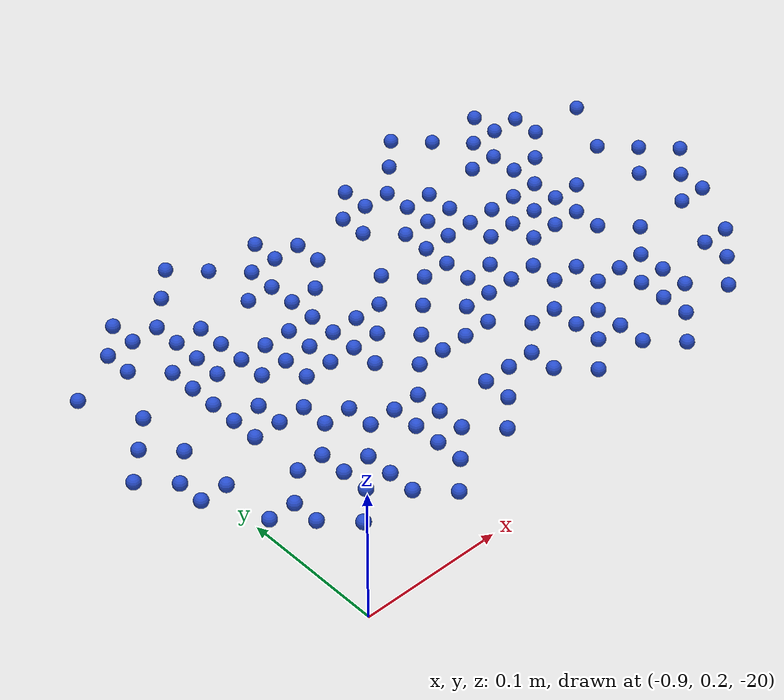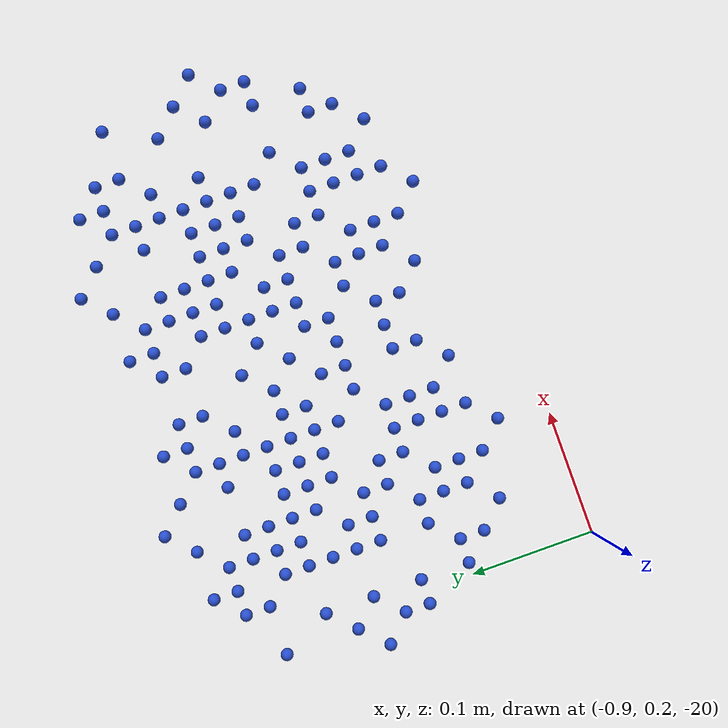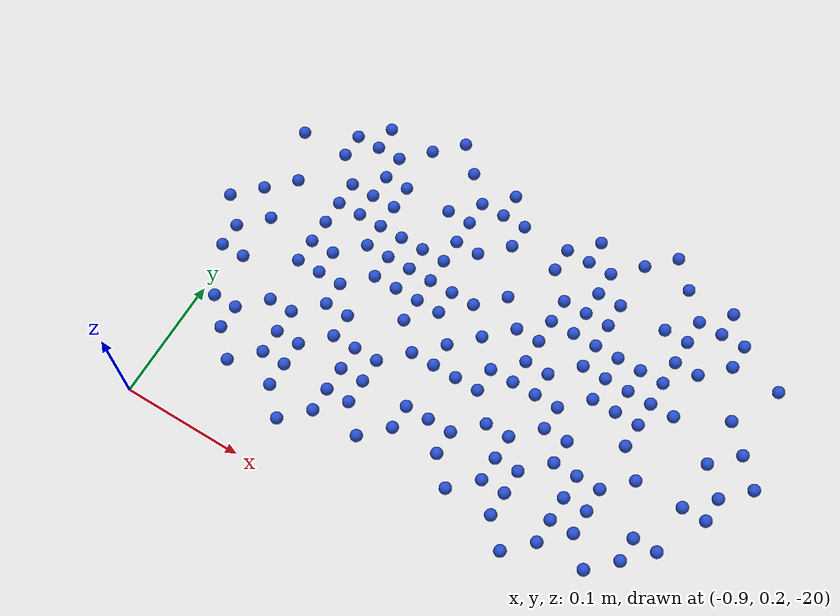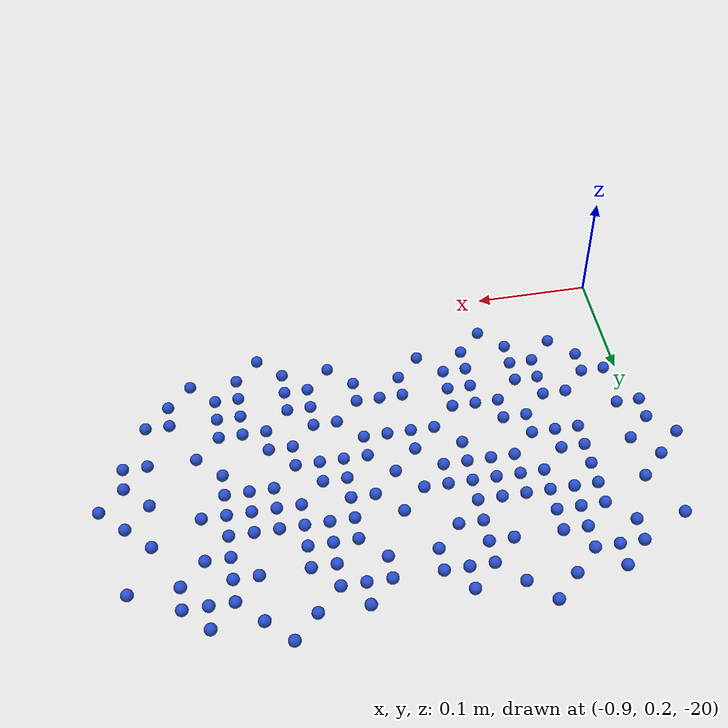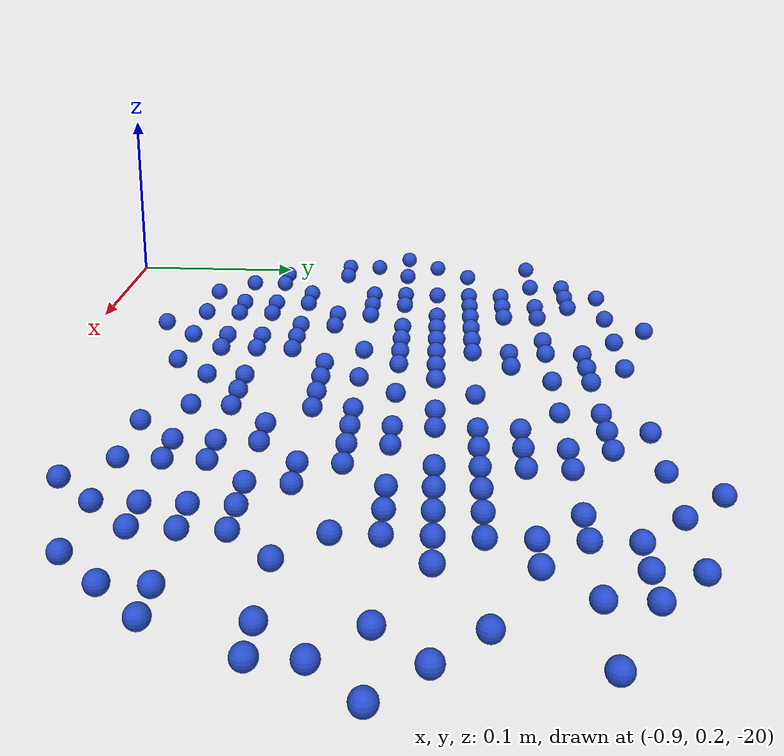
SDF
<sdf version="1.7">
 <model name="Washbasin_Water">
  <static>true</static>
  <link name="washbasin_water_br1">
   <pose>-0.59 0.38 -20 0 0 0</pose>
   <visual name="green_mark_centre1_visual">
    <geometry><sphere><radius>0.005</radius></sphere></geometry>
    <material><script><name>Gazebo/BlueGlow</name></script></material>
   </visual>
   <visual name="green_mark_centre2_visual">
    <pose>0.02 0 0 0 0 0</pose>
    <geometry><sphere><radius>0.005</radius></sphere></geometry>
    <material><script><name>Gazebo/BlueGlow</name></script></material>
   </visual>
   <visual name="green_mark_centre4_visual">
    <pose>0.04 0 0 0 0 0</pose>
    <geometry><sphere><radius>0.005</radius></sphere></geometry>
    <material><script><name>Gazebo/BlueGlow</name></script></material>
   </visual>
   <visual name="green_mark_centre5_visual">
    <pose>-0.04 0 0 0 0 0</pose>
    <geometry><sphere><radius>0.005</radius></sphere></geometry>
    <material><script><name>Gazebo/BlueGlow</name></script></material>
   </visual>
   <visual name="green_mark_centre7_visual">
    <pose>-0.06 0 0 0 0 0</pose>
    <geometry><sphere><radius>0.005</radius></sphere></geometry>
    <material><script><name>Gazebo/BlueGlow</name></script></material>
   </visual>
   <visual name="green_mark_centre8_visual">
    <pose>0 0.02 0 0 0 0</pose>
    <geometry><sphere><radius>0.005</radius></sphere></geometry>
    <material><script><name>Gazebo/BlueGlow</name></script></material>
   </visual>
   <visual name="green_mark_centre10_visual">
    <pose>0 0.04 0 0 0 0</pose>
    <geometry><sphere><radius>0.005</radius></sphere></geometry>
    <material><script><name>Gazebo/BlueGlow</name></script></material>
   </visual>
   <visual name="green_mark_centre11_visual">
    <pose>0 -0.04 0 0 0 0</pose>
    <geometry><sphere><radius>0.005</radius></sphere></geometry>
    <material><script><name>Gazebo/BlueGlow</name></script></material>
   </visual>
   <visual name="green_mark_centre13_visual">
    <pose>0 -0.06 0 0 0 0</pose>
    <geometry><sphere><radius>0.005</radius></sphere></geometry>
    <material><script><name>Gazebo/BlueGlow</name></script></material>
   </visual>
   <visual name="green_mark_centre14_visual">
    <pose>0.02 0.02 0 0 0 0</pose>
    <geometry><sphere><radius>0.005</radius></sphere></geometry>
    <material><script><name>Gazebo/BlueGlow</name></script></material>
   </visual>
   <visual name="green_mark_centre16_visual">
    <pose>-0.02 -0.02 0 0 0 0</pose>
    <geometry><sphere><radius>0.005</radius></sphere></geometry>
    <material><script><name>Gazebo/BlueGlow</name></script></material>
   </visual>
   <visual name="green_mark_centre17_visual">
    <pose>-0.02 0.02 0 0 0 0</pose>
    <geometry><sphere><radius>0.005</radius></sphere></geometry>
    <material><script><name>Gazebo/BlueGlow</name></script></material>
   </visual>
   <visual name="green_mark_centre19_visual">
    <pose>0.04 0.04 0 0 0 0</pose>
    <geometry><sphere><radius>0.005</radius></sphere></geometry>
    <material><script><name>Gazebo/BlueGlow</name></script></material>
   </visual>
   <visual name="green_mark_centre20_visual">
    <pose>-0.04 0.04 0 0 0 0</pose>
    <geometry><sphere><radius>0.005</radius></sphere></geometry>
    <material><script><name>Gazebo/BlueGlow</name></script></material>
   </visual>
   <visual name="green_mark_centre22_visual">
    <pose>0.04 0.06 0 0 0 0</pose>
    <geometry><sphere><radius>0.005</radius></sphere></geometry>
    <material><script><name>Gazebo/BlueGlow</name></script></material>
   </visual>
   <visual name="green_mark_centre23_visual">
    <pose>0.04 -0.06 0 0 0 0</pose>
    <geometry><sphere><radius>0.005</radius></sphere></geometry>
    <material><script><name>Gazebo/BlueGlow</name></script></material>
   </visual>
   <visual name="green_mark_centre25_visual">
    <pose>-0.04 0.06 0 0 0 0</pose>
    <geometry><sphere><radius>0.005</radius></sphere></geometry>
    <material><script><name>Gazebo/BlueGlow</name></script></material>
   </visual>
   <visual name="green_mark_centre26_visual">
    <pose>-0.04 -0.06 0 0 0 0</pose>
    <geometry><sphere><radius>0.005</radius></sphere></geometry>
    <material><script><name>Gazebo/BlueGlow</name></script></material>
   </visual>
   <visual name="green_mark_centre28_visual">
    <pose>0.06 0.06 0 0 0 0</pose>
    <geometry><sphere><radius>0.005</radius></sphere></geometry>
    <material><script><name>Gazebo/BlueGlow</name></script></material>
   </visual>
   <visual name="green_mark_centre29_visual">
    <pose>-0.06 0.06 0 0 0 0</pose>
    <geometry><sphere><radius>0.005</radius></sphere></geometry>
    <material><script><name>Gazebo/BlueGlow</name></script></material>
   </visual>
   <visual name="green_mark_centre31_visual">
    <pose>-0.06 -0.06 0 0 0 0</pose>
    <geometry><sphere><radius>0.005</radius></sphere></geometry>
    <material><script><name>Gazebo/BlueGlow</name></script></material>
   </visual>
   <visual name="green_mark_centre32_visual">
    <pose>0.02 0.04 0 0 0 0</pose>
    <geometry><sphere><radius>0.005</radius></sphere></geometry>
    <material><script><name>Gazebo/BlueGlow</name></script></material>
   </visual>
   <visual name="green_mark_centre34_visual">
    <pose>-0.02 0.04 0 0 0 0</pose>
    <geometry><sphere><radius>0.005</radius></sphere></geometry>
    <material><script><name>Gazebo/BlueGlow</name></script></material>
   </visual>
   <visual name="green_mark_centre35_visual">
    <pose>-0.02 -0.04 0 0 0 0</pose>
    <geometry><sphere><radius>0.005</radius></sphere></geometry>
    <material><script><name>Gazebo/BlueGlow</name></script></material>
   </visual>
   <visual name="green_mark_centre37_visual">
    <pose>0.02 -0.06 0 0 0 0</pose>
    <geometry><sphere><radius>0.005</radius></sphere></geometry>
    <material><script><name>Gazebo/BlueGlow</name></script></material>
   </visual>
   <visual name="green_mark_centre38_visual">
    <pose>-0.02 0.06 0 0 0 0</pose>
    <geometry><sphere><radius>0.005</radius></sphere></geometry>
    <material><script><name>Gazebo/BlueGlow</name></script></material>
   </visual>
   <visual name="green_mark_centre40_visual">
    <pose>0.04 0.02 0 0 0 0</pose>
    <geometry><sphere><radius>0.005</radius></sphere></geometry>
    <material><script><name>Gazebo/BlueGlow</name></script></material>
   </visual>
   <visual name="green_mark_centre41_visual">
    <pose>0.04 -0.02 0 0 0 0</pose>
    <geometry><sphere><radius>0.005</radius></sphere></geometry>
    <material><script><name>Gazebo/BlueGlow</name></script></material>
   </visual>
   <visual name="green_mark_centre43_visual">
    <pose>-0.04 -0.02 0 0 0 0</pose>
    <geometry><sphere><radius>0.005</radius></sphere></geometry>
    <material><script><name>Gazebo/BlueGlow</name></script></material>
   </visual>
   <visual name="green_mark_centre44_visual">
    <pose>0.06 0.02 0 0 0 0</pose>
    <geometry><sphere><radius>0.005</radius></sphere></geometry>
    <material><script><name>Gazebo/BlueGlow</name></script></material>
   </visual>
   <visual name="green_mark_centre46_visual">
    <pose>-0.06 0.02 0 0 0 0</pose>
    <geometry><sphere><radius>0.005</radius></sphere></geometry>
    <material><script><name>Gazebo/BlueGlow</name></script></material>
   </visual>
   <visual name="green_mark_centre47_visual">
    <pose>-0.06 -0.02 0 0 0 0</pose>
    <geometry><sphere><radius>0.005</radius></sphere></geometry>
    <material><script><name>Gazebo/BlueGlow</name></script></material>
   </visual>
   <visual name="green_mark_centre49_visual">
    <pose>0.06 -0.04 0 0 0 0</pose>
    <geometry><sphere><radius>0.005</radius></sphere></geometry>
    <material><script><name>Gazebo/BlueGlow</name></script></material>
   </visual>
   <visual name="green_mark_centre50_visual">
    <pose>-0.06 0.04 0 0 0 0</pose>
    <geometry><sphere><radius>0.005</radius></sphere></geometry>
    <material><script><name>Gazebo/BlueGlow</name></script></material>
   </visual>
   <visual name="green_mark_top1_visual">
    <pose>-0.06 0.12 0 0 0 0</pose>
    <geometry><sphere><radius>0.005</radius></sphere></geometry>
    <material><script><name>Gazebo/BlueGlow</name></script></material>
   </visual>
   <visual name="green_mark_top2_visual">
    <pose>-0.06 0.10 0 0 0 0</pose>
    <geometry><sphere><radius>0.005</radius></sphere></geometry>
    <material><script><name>Gazebo/BlueGlow</name></script></material>
   </visual>
   <visual name="green_mark_top4_visual">
    <pose>-0.04 0.10 0 0 0 0</pose>
    <geometry><sphere><radius>0.005</radius></sphere></geometry>
    <material><script><name>Gazebo/BlueGlow</name></script></material>
   </visual>
   <visual name="green_mark_top7_visual">
    <pose>-0.04 0.08 0 0 0 0</pose>
    <geometry><sphere><radius>0.005</radius></sphere></geometry>
    <material><script><name>Gazebo/BlueGlow</name></script></material>
   </visual>
   <visual name="green_mark_top8_visual">
    <pose>-0.02 0.12 0 0 0 0</pose>
    <geometry><sphere><radius>0.005</radius></sphere></geometry>
    <material><script><name>Gazebo/BlueGlow</name></script></material>
   </visual>
   <visual name="green_mark_top10_visual">
    <pose>-0.02 0.12 0 0 0 0</pose>
    <geometry><sphere><radius>0.005</radius></sphere></geometry>
    <material><script><name>Gazebo/BlueGlow</name></script></material>
   </visual>
   <visual name="green_mark_top12_visual">
    <pose>-0.02 0.08 0 0 0 0</pose>
    <geometry><sphere><radius>0.005</radius></sphere></geometry>
    <material><script><name>Gazebo/BlueGlow</name></script></material>
   </visual>
   <visual name="green_mark_top14_visual">
    <pose>0.06 0.12 0 0 0 0</pose>
    <geometry><sphere><radius>0.005</radius></sphere></geometry>
    <material><script><name>Gazebo/BlueGlow</name></script></material>
   </visual>
   <visual name="green_mark_top15_visual">
    <pose>0.06 0.10 0 0 0 0</pose>
    <geometry><sphere><radius>0.005</radius></sphere></geometry>
    <material><script><name>Gazebo/BlueGlow</name></script></material>
   </visual>
   <visual name="green_mark_top17_visual">
    <pose>0.04 0.10 0 0 0 0</pose>
    <geometry><sphere><radius>0.005</radius></sphere></geometry>
    <material><script><name>Gazebo/BlueGlow</name></script></material>
   </visual>
   <visual name="green_mark_top20_visual">
    <pose>0.04 0.08 0 0 0 0</pose>
    <geometry><sphere><radius>0.005</radius></sphere></geometry>
    <material><script><name>Gazebo/BlueGlow</name></script></material>
   </visual>
   <visual name="green_mark_top21_visual">
    <pose>0.02 0.12 0 0 0 0</pose>
    <geometry><sphere><radius>0.005</radius></sphere></geometry>
    <material><script><name>Gazebo/BlueGlow</name></script></material>
   </visual>
   <visual name="green_mark_top23_visual">
    <pose>0.02 0.12 0 0 0 0</pose>
    <geometry><sphere><radius>0.005</radius></sphere></geometry>
    <material><script><name>Gazebo/BlueGlow</name></script></material>
   </visual>
   <visual name="green_mark_top25_visual">
    <pose>0.02 0.08 0 0 0 0</pose>
    <geometry><sphere><radius>0.005</radius></sphere></geometry>
    <material><script><name>Gazebo/BlueGlow</name></script></material>
   </visual>
   <visual name="green_mark_top88_visual">
    <pose>0.0 0.14 0 0 0 0</pose>
    <geometry><sphere><radius>0.005</radius></sphere></geometry>
    <material><script><name>Gazebo/BlueGlow</name></script></material>
   </visual>
   <visual name="green_mark_top89_visual">
    <pose>0.0 -0.14 0 0 0 0</pose>
    <geometry><sphere><radius>0.005</radius></sphere></geometry>
    <material><script><name>Gazebo/BlueGlow</name></script></material>
   </visual>
   <visual name="green_mark_top3_visual">
    <pose>-0.06 -0.12 0 0 0 0</pose>
    <geometry><sphere><radius>0.005</radius></sphere></geometry>
    <material><script><name>Gazebo/BlueGlow</name></script></material>
   </visual>
   <visual name="green_mark_top5_visual">
    <pose>-0.04 -0.10 0 0 0 0</pose>
    <geometry><sphere><radius>0.005</radius></sphere></geometry>
    <material><script><name>Gazebo/BlueGlow</name></script></material>
   </visual>
   <visual name="green_mark_top6_visual">
    <pose>-0.04 -0.08 0 0 0 0</pose>
    <geometry><sphere><radius>0.005</radius></sphere></geometry>
    <material><script><name>Gazebo/BlueGlow</name></script></material>
   </visual>
   <visual name="green_mark_top9_visual">
    <pose>-0.02 -0.12 0 0 0 0</pose>
    <geometry><sphere><radius>0.005</radius></sphere></geometry>
    <material><script><name>Gazebo/BlueGlow</name></script></material>
   </visual>
   <visual name="green_mark_top11_visual">
    <pose>-0.02 -0.10 0 0 0 0</pose>
    <geometry><sphere><radius>0.005</radius></sphere></geometry>
    <material><script><name>Gazebo/BlueGlow</name></script></material>
   </visual>
   <visual name="green_mark_top13_visual">
    <pose>-0.02 -0.08 0 0 0 0</pose>
    <geometry><sphere><radius>0.005</radius></sphere></geometry>
    <material><script><name>Gazebo/BlueGlow</name></script></material>
   </visual>
   <visual name="green_mark_top6_visual">
    <pose>-0.04 -0.08 0 0 0 0</pose>
    <geometry><sphere><radius>0.005</radius></sphere></geometry>
    <material><script><name>Gazebo/BlueGlow</name></script></material>
   </visual>
   <visual name="green_mark_top16_visual">
    <pose>0.06 -0.12 0 0 0 0</pose>
    <geometry><sphere><radius>0.005</radius></sphere></geometry>
    <material><script><name>Gazebo/BlueGlow</name></script></material>
   </visual>
   <visual name="green_mark_top18_visual">
    <pose>0.04 -0.10 0 0 0 0</pose>
    <geometry><sphere><radius>0.005</radius></sphere></geometry>
    <material><script><name>Gazebo/BlueGlow</name></script></material>
   </visual>
   <visual name="green_mark_top19_visual">
    <pose>0.04 -0.08 0 0 0 0</pose>
    <geometry><sphere><radius>0.005</radius></sphere></geometry>
    <material><script><name>Gazebo/BlueGlow</name></script></material>
   </visual>
   <visual name="green_mark_top22_visual">
    <pose>0.02 -0.12 0 0 0 0</pose>
    <geometry><sphere><radius>0.005</radius></sphere></geometry>
    <material><script><name>Gazebo/BlueGlow</name></script></material>
   </visual>
   <visual name="green_mark_top24_visual">
    <pose>0.02 -0.10 0 0 0 0</pose>
    <geometry><sphere><radius>0.005</radius></sphere></geometry>
    <material><script><name>Gazebo/BlueGlow</name></script></material>
   </visual>
   <visual name="green_mark_top26_visual">
    <pose>0.02 -0.08 0 0 0 0</pose>
    <geometry><sphere><radius>0.005</radius></sphere></geometry>
    <material><script><name>Gazebo/BlueGlow</name></script></material>
   </visual>
   <visual name="green_mark_top3_visual">
    <pose>-0.14 0 0 0 0 0</pose>
    <geometry><sphere><radius>0.005</radius></sphere></geometry>
    <material><script><name>Gazebo/BlueGlow</name></script></material>
   </visual>
   <visual name="green_mark_top365_visual">
    <pose>-0.12 0.08 0 0 0 0</pose>
    <geometry><sphere><radius>0.005</radius></sphere></geometry>
    <material><script><name>Gazebo/BlueGlow</name></script></material>
   </visual>
   <visual name="green_mark_top93_visual">
    <pose>-0.10 0 0 0 0 0</pose>
    <geometry><sphere><radius>0.005</radius></sphere></geometry>
    <material><script><name>Gazebo/BlueGlow</name></script></material>
   </visual>
   <visual name="green_mark_top5_visual">
    <pose>-0.12 0.02 0 0 0 0</pose>
    <geometry><sphere><radius>0.005</radius></sphere></geometry>
    <material><script><name>Gazebo/BlueGlow</name></script></material>
   </visual>
   <visual name="green_mark_top6_visual">
    <pose>-0.10 0.04 0 0 0 0</pose>
    <geometry><sphere><radius>0.005</radius></sphere></geometry>
    <material><script><name>Gazebo/BlueGlow</name></script></material>
   </visual>
   <visual name="green_mark_top20_visual">
    <pose>-0.08 0.10 0 0 0 0</pose>
    <geometry><sphere><radius>0.005</radius></sphere></geometry>
    <material><script><name>Gazebo/BlueGlow</name></script></material>
   </visual>
   <visual name="green_mark_top50_visual">
    <pose>-0.08 0.08 0 0 0 0</pose>
    <geometry><sphere><radius>0.005</radius></sphere></geometry>
    <material><script><name>Gazebo/BlueGlow</name></script></material>
   </visual>
   <visual name="green_mark_top3_visual">
    <pose>-0.12 -0.04 0 0 0 0</pose>
    <geometry><sphere><radius>0.005</radius></sphere></geometry>
    <material><script><name>Gazebo/BlueGlow</name></script></material>
   </visual>
   <visual name="green_mark_top5_visual">
    <pose>-0.12 -0.02 0 0 0 0</pose>
    <geometry><sphere><radius>0.005</radius></sphere></geometry>
    <material><script><name>Gazebo/BlueGlow</name></script></material>
   </visual>
   <visual name="green_mark_top6_visual">
    <pose>-0.10 -0.04 0 0 0 0</pose>
    <geometry><sphere><radius>0.005</radius></sphere></geometry>
    <material><script><name>Gazebo/BlueGlow</name></script></material>
   </visual>
   <visual name="green_mark_top6_visual">
    <pose>-0.10 -0.08 0 0 0 0</pose>
    <geometry><sphere><radius>0.005</radius></sphere></geometry>
    <material><script><name>Gazebo/BlueGlow</name></script></material>
   </visual>
   <visual name="green_mark_top20_visual">
    <pose>-0.08 -0.10 0 0 0 0</pose>
    <geometry><sphere><radius>0.005</radius></sphere></geometry>
    <material><script><name>Gazebo/BlueGlow</name></script></material>
   </visual>
   <visual name="green_mark_top50_visual">
    <pose>-0.08 -0.08 0 0 0 0</pose>
    <geometry><sphere><radius>0.005</radius></sphere></geometry>
    <material><script><name>Gazebo/BlueGlow</name></script></material>
   </visual>
   <visual name="green_mark_top3_visual">
    <pose>0.14 0 0 0 0 0</pose>
    <geometry><sphere><radius>0.005</radius></sphere></geometry>
    <material><script><name>Gazebo/BlueGlow</name></script></material>
   </visual>
   <visual name="green_mark_top365_visual">
    <pose>0.12 0.08 0 0 0 0</pose>
    <geometry><sphere><radius>0.005</radius></sphere></geometry>
    <material><script><name>Gazebo/BlueGlow</name></script></material>
   </visual>
   <visual name="green_mark_top93_visual">
    <pose>0.10 0 0 0 0 0</pose>
    <geometry><sphere><radius>0.005</radius></sphere></geometry>
    <material><script><name>Gazebo/BlueGlow</name></script></material>
   </visual>
   <visual name="green_mark_top5_visual">
    <pose>0.12 0.02 0 0 0 0</pose>
    <geometry><sphere><radius>0.005</radius></sphere></geometry>
    <material><script><name>Gazebo/BlueGlow</name></script></material>
   </visual>
   <visual name="green_mark_top6_visual">
    <pose>0.10 0.04 0 0 0 0</pose>
    <geometry><sphere><radius>0.005</radius></sphere></geometry>
    <material><script><name>Gazebo/BlueGlow</name></script></material>
   </visual>
   <visual name="green_mark_top20_visual">
    <pose>0.08 0.10 0 0 0 0</pose>
    <geometry><sphere><radius>0.005</radius></sphere></geometry>
    <material><script><name>Gazebo/BlueGlow</name></script></material>
   </visual>
   <visual name="green_mark_top50_visual">
    <pose>0.08 0.08 0 0 0 0</pose>
    <geometry><sphere><radius>0.005</radius></sphere></geometry>
    <material><script><name>Gazebo/BlueGlow</name></script></material>
   </visual>
   <visual name="green_mark_top3_visual">
    <pose>0.12 -0.04 0 0 0 0</pose>
    <geometry><sphere><radius>0.005</radius></sphere></geometry>
    <material><script><name>Gazebo/BlueGlow</name></script></material>
   </visual>
   <visual name="green_mark_top5_visual">
    <pose>0.12 -0.02 0 0 0 0</pose>
    <geometry><sphere><radius>0.005</radius></sphere></geometry>
    <material><script><name>Gazebo/BlueGlow</name></script></material>
   </visual>
   <visual name="green_mark_top6_visual">
    <pose>0.10 -0.04 0 0 0 0</pose>
    <geometry><sphere><radius>0.005</radius></sphere></geometry>
    <material><script><name>Gazebo/BlueGlow</name></script></material>
   </visual>
   <visual name="green_mark_top6_visual">
    <pose>0.10 -0.08 0 0 0 0</pose>
    <geometry><sphere><radius>0.005</radius></sphere></geometry>
    <material><script><name>Gazebo/BlueGlow</name></script></material>
   </visual>
   <visual name="green_mark_top20_visual">
    <pose>0.08 -0.10 0 0 0 0</pose>
    <geometry><sphere><radius>0.005</radius></sphere></geometry>
    <material><script><name>Gazebo/BlueGlow</name></script></material>
   </visual>
   <visual name="green_mark_top50_visual">
    <pose>0.08 -0.08 0 0 0 0</pose>
    <geometry><sphere><radius>0.005</radius></sphere></geometry>
    <material><script><name>Gazebo/BlueGlow</name></script></material>
   </visual>
  </link>
  <link name="washbasin_water_br2">
   <pose>-0.79 0.38 -20 0 0 0</pose>
   <visual name="green_mark_centre1_visual">
    <geometry><sphere><radius>0.005</radius></sphere></geometry>
    <material><script><name>Gazebo/BlueGlow</name></script></material>
   </visual>
   <visual name="green_mark_centre2_visual">
    <pose>0.02 0 0 0 0 0</pose>
    <geometry><sphere><radius>0.005</radius></sphere></geometry>
    <material><script><name>Gazebo/BlueGlow</name></script></material>
   </visual>
   <visual name="green_mark_centre4_visual">
    <pose>0.04 0 0 0 0 0</pose>
    <geometry><sphere><radius>0.005</radius></sphere></geometry>
    <material><script><name>Gazebo/BlueGlow</name></script></material>
   </visual>
   <visual name="green_mark_centre5_visual">
    <pose>-0.04 0 0 0 0 0</pose>
    <geometry><sphere><radius>0.005</radius></sphere></geometry>
    <material><script><name>Gazebo/BlueGlow</name></script></material>
   </visual>
   <visual name="green_mark_centre7_visual">
    <pose>-0.06 0 0 0 0 0</pose>
    <geometry><sphere><radius>0.005</radius></sphere></geometry>
    <material><script><name>Gazebo/BlueGlow</name></script></material>
   </visual>
   <visual name="green_mark_centre8_visual">
    <pose>0 0.02 0 0 0 0</pose>
    <geometry><sphere><radius>0.005</radius></sphere></geometry>
    <material><script><name>Gazebo/BlueGlow</name></script></material>
   </visual>
   <visual name="green_mark_centre10_visual">
    <pose>0 0.04 0 0 0 0</pose>
    <geometry><sphere><radius>0.005</radius></sphere></geometry>
    <material><script><name>Gazebo/BlueGlow</name></script></material>
   </visual>
   <visual name="green_mark_centre11_visual">
    <pose>0 -0.04 0 0 0 0</pose>
    <geometry><sphere><radius>0.005</radius></sphere></geometry>
    <material><script><name>Gazebo/BlueGlow</name></script></material>
   </visual>
   <visual name="green_mark_centre13_visual">
    <pose>0 -0.06 0 0 0 0</pose>
    <geometry><sphere><radius>0.005</radius></sphere></geometry>
    <material><script><name>Gazebo/BlueGlow</name></script></material>
   </visual>
   <visual name="green_mark_centre14_visual">
    <pose>0.02 0.02 0 0 0 0</pose>
    <geometry><sphere><radius>0.005</radius></sphere></geometry>
    <material><script><name>Gazebo/BlueGlow</name></script></material>
   </visual>
   <visual name="green_mark_centre16_visual">
    <pose>-0.02 -0.02 0 0 0 0</pose>
    <geometry><sphere><radius>0.005</radius></sphere></geometry>
    <material><script><name>Gazebo/BlueGlow</name></script></material>
   </visual>
   <visual name="green_mark_centre17_visual">
    <pose>-0.02 0.02 0 0 0 0</pose>
    <geometry><sphere><radius>0.005</radius></sphere></geometry>
    <material><script><name>Gazebo/BlueGlow</name></script></material>
   </visual>
   <visual name="green_mark_centre19_visual">
    <pose>0.04 0.04 0 0 0 0</pose>
    <geometry><sphere><radius>0.005</radius></sphere></geometry>
    <material><script><name>Gazebo/BlueGlow</name></script></material>
   </visual>
   <visual name="green_mark_centre20_visual">
    <pose>-0.04 0.04 0 0 0 0</pose>
    <geometry><sphere><radius>0.005</radius></sphere></geometry>
    <material><script><name>Gazebo/BlueGlow</name></script></material>
   </visual>
   <visual name="green_mark_centre22_visual">
    <pose>0.04 0.06 0 0 0 0</pose>
    <geometry><sphere><radius>0.005</radius></sphere></geometry>
    <material><script><name>Gazebo/BlueGlow</name></script></material>
   </visual>
   <visual name="green_mark_centre23_visual">
    <pose>0.04 -0.06 0 0 0 0</pose>
    <geometry><sphere><radius>0.005</radius></sphere></geometry>
    <material><script><name>Gazebo/BlueGlow</name></script></material>
   </visual>
   <visual name="green_mark_centre25_visual">
    <pose>-0.04 0.06 0 0 0 0</pose>
    <geometry><sphere><radius>0.005</radius></sphere></geometry>
    <material><script><name>Gazebo/BlueGlow</name></script></material>
   </visual>
   <visual name="green_mark_centre26_visual">
    <pose>-0.04 -0.06 0 0 0 0</pose>
    <geometry><sphere><radius>0.005</radius></sphere></geometry>
    <material><script><name>Gazebo/BlueGlow</name></script></material>
   </visual>
   <visual name="green_mark_centre28_visual">
    <pose>0.06 0.06 0 0 0 0</pose>
    <geometry><sphere><radius>0.005</radius></sphere></geometry>
    <material><script><name>Gazebo/BlueGlow</name></script></material>
   </visual>
   <visual name="green_mark_centre29_visual">
    <pose>-0.06 0.06 0 0 0 0</pose>
    <geometry><sphere><radius>0.005</radius></sphere></geometry>
    <material><script><name>Gazebo/BlueGlow</name></script></material>
   </visual>
   <visual name="green_mark_centre31_visual">
    <pose>-0.06 -0.06 0 0 0 0</pose>
    <geometry><sphere><radius>0.005</radius></sphere></geometry>
    <material><script><name>Gazebo/BlueGlow</name></script></material>
   </visual>
   <visual name="green_mark_centre32_visual">
    <pose>0.02 0.04 0 0 0 0</pose>
    <geometry><sphere><radius>0.005</radius></sphere></geometry>
    <material><script><name>Gazebo/BlueGlow</name></script></material>
   </visual>
   <visual name="green_mark_centre34_visual">
    <pose>-0.02 0.04 0 0 0 0</pose>
    <geometry><sphere><radius>0.005</radius></sphere></geometry>
    <material><script><name>Gazebo/BlueGlow</name></script></material>
   </visual>
   <visual name="green_mark_centre35_visual">
    <pose>-0.02 -0.04 0 0 0 0</pose>
    <geometry><sphere><radius>0.005</radius></sphere></geometry>
    <material><script><name>Gazebo/BlueGlow</name></script></material>
   </visual>
   <visual name="green_mark_centre37_visual">
    <pose>0.02 -0.06 0 0 0 0</pose>
    <geometry><sphere><radius>0.005</radius></sphere></geometry>
    <material><script><name>Gazebo/BlueGlow</name></script></material>
   </visual>
   <visual name="green_mark_centre38_visual">
    <pose>-0.02 0.06 0 0 0 0</pose>
    <geometry><sphere><radius>0.005</radius></sphere></geometry>
    <material><script><name>Gazebo/BlueGlow</name></script></material>
   </visual>
   <visual name="green_mark_centre40_visual">
    <pose>0.04 0.02 0 0 0 0</pose>
    <geometry><sphere><radius>0.005</radius></sphere></geometry>
    <material><script><name>Gazebo/BlueGlow</name></script></material>
   </visual>
   <visual name="green_mark_centre41_visual">
    <pose>0.04 -0.02 0 0 0 0</pose>
    <geometry><sphere><radius>0.005</radius></sphere></geometry>
    <material><script><name>Gazebo/BlueGlow</name></script></material>
   </visual>
   <visual name="green_mark_centre43_visual">
    <pose>-0.04 -0.02 0 0 0 0</pose>
    <geometry><sphere><radius>0.005</radius></sphere></geometry>
    <material><script><name>Gazebo/BlueGlow</name></script></material>
   </visual>
   <visual name="green_mark_centre44_visual">
    <pose>0.06 0.02 0 0 0 0</pose>
    <geometry><sphere><radius>0.005</radius></sphere></geometry>
    <material><script><name>Gazebo/BlueGlow</name></script></material>
   </visual>
   <visual name="green_mark_centre46_visual">
    <pose>-0.06 0.02 0 0 0 0</pose>
    <geometry><sphere><radius>0.005</radius></sphere></geometry>
    <material><script><name>Gazebo/BlueGlow</name></script></material>
   </visual>
   <visual name="green_mark_centre47_visual">
    <pose>-0.06 -0.02 0 0 0 0</pose>
    <geometry><sphere><radius>0.005</radius></sphere></geometry>
    <material><script><name>Gazebo/BlueGlow</name></script></material>
   </visual>
   <visual name="green_mark_centre49_visual">
    <pose>0.06 -0.04 0 0 0 0</pose>
    <geometry><sphere><radius>0.005</radius></sphere></geometry>
    <material><script><name>Gazebo/BlueGlow</name></script></material>
   </visual>
   <visual name="green_mark_centre50_visual">
    <pose>-0.06 0.04 0 0 0 0</pose>
    <geometry><sphere><radius>0.005</radius></sphere></geometry>
    <material><script><name>Gazebo/BlueGlow</name></script></material>
   </visual>
   <visual name="green_mark_top1_visual">
    <pose>-0.06 0.12 0 0 0 0</pose>
    <geometry><sphere><radius>0.005</radius></sphere></geometry>
    <material><script><name>Gazebo/BlueGlow</name></script></material>
   </visual>
   <visual name="green_mark_top2_visual">
    <pose>-0.06 0.10 0 0 0 0</pose>
    <geometry><sphere><radius>0.005</radius></sphere></geometry>
    <material><script><name>Gazebo/BlueGlow</name></script></material>
   </visual>
   <visual name="green_mark_top4_visual">
    <pose>-0.04 0.10 0 0 0 0</pose>
    <geometry><sphere><radius>0.005</radius></sphere></geometry>
    <material><script><name>Gazebo/BlueGlow</name></script></material>
   </visual>
   <visual name="green_mark_top7_visual">
    <pose>-0.04 0.08 0 0 0 0</pose>
    <geometry><sphere><radius>0.005</radius></sphere></geometry>
    <material><script><name>Gazebo/BlueGlow</name></script></material>
   </visual>
   <visual name="green_mark_top8_visual">
    <pose>-0.02 0.12 0 0 0 0</pose>
    <geometry><sphere><radius>0.005</radius></sphere></geometry>
    <material><script><name>Gazebo/BlueGlow</name></script></material>
   </visual>
   <visual name="green_mark_top10_visual">
    <pose>-0.02 0.12 0 0 0 0</pose>
    <geometry><sphere><radius>0.005</radius></sphere></geometry>
    <material><script><name>Gazebo/BlueGlow</name></script></material>
   </visual>
   <visual name="green_mark_top12_visual">
    <pose>-0.02 0.08 0 0 0 0</pose>
    <geometry><sphere><radius>0.005</radius></sphere></geometry>
    <material><script><name>Gazebo/BlueGlow</name></script></material>
   </visual>
   <visual name="green_mark_top14_visual">
    <pose>0.06 0.12 0 0 0 0</pose>
    <geometry><sphere><radius>0.005</radius></sphere></geometry>
    <material><script><name>Gazebo/BlueGlow</name></script></material>
   </visual>
   <visual name="green_mark_top15_visual">
    <pose>0.06 0.10 0 0 0 0</pose>
    <geometry><sphere><radius>0.005</radius></sphere></geometry>
    <material><script><name>Gazebo/BlueGlow</name></script></material>
   </visual>
   <visual name="green_mark_top17_visual">
    <pose>0.04 0.10 0 0 0 0</pose>
    <geometry><sphere><radius>0.005</radius></sphere></geometry>
    <material><script><name>Gazebo/BlueGlow</name></script></material>
   </visual>
   <visual name="green_mark_top20_visual">
    <pose>0.04 0.08 0 0 0 0</pose>
    <geometry><sphere><radius>0.005</radius></sphere></geometry>
    <material><script><name>Gazebo/BlueGlow</name></script></material>
   </visual>
   <visual name="green_mark_top21_visual">
    <pose>0.02 0.12 0 0 0 0</pose>
    <geometry><sphere><radius>0.005</radius></sphere></geometry>
    <material><script><name>Gazebo/BlueGlow</name></script></material>
   </visual>
   <visual name="green_mark_top23_visual">
    <pose>0.02 0.12 0 0 0 0</pose>
    <geometry><sphere><radius>0.005</radius></sphere></geometry>
    <material><script><name>Gazebo/BlueGlow</name></script></material>
   </visual>
   <visual name="green_mark_top25_visual">
    <pose>0.02 0.08 0 0 0 0</pose>
    <geometry><sphere><radius>0.005</radius></sphere></geometry>
    <material><script><name>Gazebo/BlueGlow</name></script></material>
   </visual>
   <visual name="green_mark_top88_visual">
    <pose>0.0 0.14 0 0 0 0</pose>
    <geometry><sphere><radius>0.005</radius></sphere></geometry>
    <material><script><name>Gazebo/BlueGlow</name></script></material>
   </visual>
   <visual name="green_mark_top89_visual">
    <pose>0.0 -0.14 0 0 0 0</pose>
    <geometry><sphere><radius>0.005</radius></sphere></geometry>
    <material><script><name>Gazebo/BlueGlow</name></script></material>
   </visual>
   <visual name="green_mark_top3_visual">
    <pose>-0.06 -0.12 0 0 0 0</pose>
    <geometry><sphere><radius>0.005</radius></sphere></geometry>
    <material><script><name>Gazebo/BlueGlow</name></script></material>
   </visual>
   <visual name="green_mark_top5_visual">
    <pose>-0.04 -0.10 0 0 0 0</pose>
    <geometry><sphere><radius>0.005</radius></sphere></geometry>
    <material><script><name>Gazebo/BlueGlow</name></script></material>
   </visual>
   <visual name="green_mark_top6_visual">
    <pose>-0.04 -0.08 0 0 0 0</pose>
    <geometry><sphere><radius>0.005</radius></sphere></geometry>
    <material><script><name>Gazebo/BlueGlow</name></script></material>
   </visual>
   <visual name="green_mark_top9_visual">
    <pose>-0.02 -0.12 0 0 0 0</pose>
    <geometry><sphere><radius>0.005</radius></sphere></geometry>
    <material><script><name>Gazebo/BlueGlow</name></script></material>
   </visual>
   <visual name="green_mark_top11_visual">
    <pose>-0.02 -0.10 0 0 0 0</pose>
    <geometry><sphere><radius>0.005</radius></sphere></geometry>
    <material><script><name>Gazebo/BlueGlow</name></script></material>
   </visual>
   <visual name="green_mark_top13_visual">
    <pose>-0.02 -0.08 0 0 0 0</pose>
    <geometry><sphere><radius>0.005</radius></sphere></geometry>
    <material><script><name>Gazebo/BlueGlow</name></script></material>
   </visual>
   <visual name="green_mark_top6_visual">
    <pose>-0.04 -0.08 0 0 0 0</pose>
    <geometry><sphere><radius>0.005</radius></sphere></geometry>
    <material><script><name>Gazebo/BlueGlow</name></script></material>
   </visual>
   <visual name="green_mark_top16_visual">
    <pose>0.06 -0.12 0 0 0 0</pose>
    <geometry><sphere><radius>0.005</radius></sphere></geometry>
    <material><script><name>Gazebo/BlueGlow</name></script></material>
   </visual>
   <visual name="green_mark_top18_visual">
    <pose>0.04 -0.10 0 0 0 0</pose>
    <geometry><sphere><radius>0.005</radius></sphere></geometry>
    <material><script><name>Gazebo/BlueGlow</name></script></material>
   </visual>
   <visual name="green_mark_top19_visual">
    <pose>0.04 -0.08 0 0 0 0</pose>
    <geometry><sphere><radius>0.005</radius></sphere></geometry>
    <material><script><name>Gazebo/BlueGlow</name></script></material>
   </visual>
   <visual name="green_mark_top22_visual">
    <pose>0.02 -0.12 0 0 0 0</pose>
    <geometry><sphere><radius>0.005</radius></sphere></geometry>
    <material><script><name>Gazebo/BlueGlow</name></script></material>
   </visual>
   <visual name="green_mark_top24_visual">
    <pose>0.02 -0.10 0 0 0 0</pose>
    <geometry><sphere><radius>0.005</radius></sphere></geometry>
    <material><script><name>Gazebo/BlueGlow</name></script></material>
   </visual>
   <visual name="green_mark_top26_visual">
    <pose>0.02 -0.08 0 0 0 0</pose>
    <geometry><sphere><radius>0.005</radius></sphere></geometry>
    <material><script><name>Gazebo/BlueGlow</name></script></material>
   </visual>
   <visual name="green_mark_top3_visual">
    <pose>-0.14 0 0 0 0 0</pose>
    <geometry><sphere><radius>0.005</radius></sphere></geometry>
    <material><script><name>Gazebo/BlueGlow</name></script></material>
   </visual>
   <visual name="green_mark_top365_visual">
    <pose>-0.12 0.08 0 0 0 0</pose>
    <geometry><sphere><radius>0.005</radius></sphere></geometry>
    <material><script><name>Gazebo/BlueGlow</name></script></material>
   </visual>
   <visual name="green_mark_top93_visual">
    <pose>-0.10 0 0 0 0 0</pose>
    <geometry><sphere><radius>0.005</radius></sphere></geometry>
    <material><script><name>Gazebo/BlueGlow</name></script></material>
   </visual>
   <visual name="green_mark_top5_visual">
    <pose>-0.12 0.02 0 0 0 0</pose>
    <geometry><sphere><radius>0.005</radius></sphere></geometry>
    <material><script><name>Gazebo/BlueGlow</name></script></material>
   </visual>
   <visual name="green_mark_top6_visual">
    <pose>-0.10 0.04 0 0 0 0</pose>
    <geometry><sphere><radius>0.005</radius></sphere></geometry>
    <material><script><name>Gazebo/BlueGlow</name></script></material>
   </visual>
   <visual name="green_mark_top20_visual">
    <pose>-0.08 0.10 0 0 0 0</pose>
    <geometry><sphere><radius>0.005</radius></sphere></geometry>
    <material><script><name>Gazebo/BlueGlow</name></script></material>
   </visual>
   <visual name="green_mark_top50_visual">
    <pose>-0.08 0.08 0 0 0 0</pose>
    <geometry><sphere><radius>0.005</radius></sphere></geometry>
    <material><script><name>Gazebo/BlueGlow</name></script></material>
   </visual>
   <visual name="green_mark_top3_visual">
    <pose>-0.12 -0.04 0 0 0 0</pose>
    <geometry><sphere><radius>0.005</radius></sphere></geometry>
    <material><script><name>Gazebo/BlueGlow</name></script></material>
   </visual>
   <visual name="green_mark_top5_visual">
    <pose>-0.12 -0.02 0 0 0 0</pose>
    <geometry><sphere><radius>0.005</radius></sphere></geometry>
    <material><script><name>Gazebo/BlueGlow</name></script></material>
   </visual>
   <visual name="green_mark_top6_visual">
    <pose>-0.10 -0.04 0 0 0 0</pose>
    <geometry><sphere><radius>0.005</radius></sphere></geometry>
    <material><script><name>Gazebo/BlueGlow</name></script></material>
   </visual>
   <visual name="green_mark_top6_visual">
    <pose>-0.10 -0.08 0 0 0 0</pose>
    <geometry><sphere><radius>0.005</radius></sphere></geometry>
    <material><script><name>Gazebo/BlueGlow</name></script></material>
   </visual>
   <visual name="green_mark_top20_visual">
    <pose>-0.08 -0.10 0 0 0 0</pose>
    <geometry><sphere><radius>0.005</radius></sphere></geometry>
    <material><script><name>Gazebo/BlueGlow</name></script></material>
   </visual>
   <visual name="green_mark_top50_visual">
    <pose>-0.08 -0.08 0 0 0 0</pose>
    <geometry><sphere><radius>0.005</radius></sphere></geometry>
    <material><script><name>Gazebo/BlueGlow</name></script></material>
   </visual>
   <visual name="green_mark_top3_visual">
    <pose>0.14 0 0 0 0 0</pose>
    <geometry><sphere><radius>0.005</radius></sphere></geometry>
    <material><script><name>Gazebo/BlueGlow</name></script></material>
   </visual>
   <visual name="green_mark_top365_visual">
    <pose>0.12 0.08 0 0 0 0</pose>
    <geometry><sphere><radius>0.005</radius></sphere></geometry>
    <material><script><name>Gazebo/BlueGlow</name></script></material>
   </visual>
   <visual name="green_mark_top93_visual">
    <pose>0.10 0 0 0 0 0</pose>
    <geometry><sphere><radius>0.005</radius></sphere></geometry>
    <material><script><name>Gazebo/BlueGlow</name></script></material>
   </visual>
   <visual name="green_mark_top5_visual">
    <pose>0.12 0.02 0 0 0 0</pose>
    <geometry><sphere><radius>0.005</radius></sphere></geometry>
    <material><script><name>Gazebo/BlueGlow</name></script></material>
   </visual>
   <visual name="green_mark_top6_visual">
    <pose>0.10 0.04 0 0 0 0</pose>
    <geometry><sphere><radius>0.005</radius></sphere></geometry>
    <material><script><name>Gazebo/BlueGlow</name></script></material>
   </visual>
   <visual name="green_mark_top20_visual">
    <pose>0.08 0.10 0 0 0 0</pose>
    <geometry><sphere><radius>0.005</radius></sphere></geometry>
    <material><script><name>Gazebo/BlueGlow</name></script></material>
   </visual>
   <visual name="green_mark_top50_visual">
    <pose>0.08 0.08 0 0 0 0</pose>
    <geometry><sphere><radius>0.005</radius></sphere></geometry>
    <material><script><name>Gazebo/BlueGlow</name></script></material>
   </visual>
   <visual name="green_mark_top3_visual">
    <pose>0.12 -0.04 0 0 0 0</pose>
    <geometry><sphere><radius>0.005</radius></sphere></geometry>
    <material><script><name>Gazebo/BlueGlow</name></script></material>
   </visual>
   <visual name="green_mark_top5_visual">
    <pose>0.12 -0.02 0 0 0 0</pose>
    <geometry><sphere><radius>0.005</radius></sphere></geometry>
    <material><script><name>Gazebo/BlueGlow</name></script></material>
   </visual>
   <visual name="green_mark_top6_visual">
    <pose>0.10 -0.04 0 0 0 0</pose>
    <geometry><sphere><radius>0.005</radius></sphere></geometry>
    <material><script><name>Gazebo/BlueGlow</name></script></material>
   </visual>
   <visual name="green_mark_top6_visual">
    <pose>0.10 -0.08 0 0 0 0</pose>
    <geometry><sphere><radius>0.005</radius></sphere></geometry>
    <material><script><name>Gazebo/BlueGlow</name></script></material>
   </visual>
   <visual name="green_mark_top20_visual">
    <pose>0.08 -0.10 0 0 0 0</pose>
    <geometry><sphere><radius>0.005</radius></sphere></geometry>
    <material><script><name>Gazebo/BlueGlow</name></script></material>
   </visual>
   <visual name="green_mark_top50_visual">
    <pose>0.08 -0.08 0 0 0 0</pose>
    <geometry><sphere><radius>0.005</radius></sphere></geometry>
    <material><script><name>Gazebo/BlueGlow</name></script></material>
   </visual>
  </link>
 </model>
</sdf>
